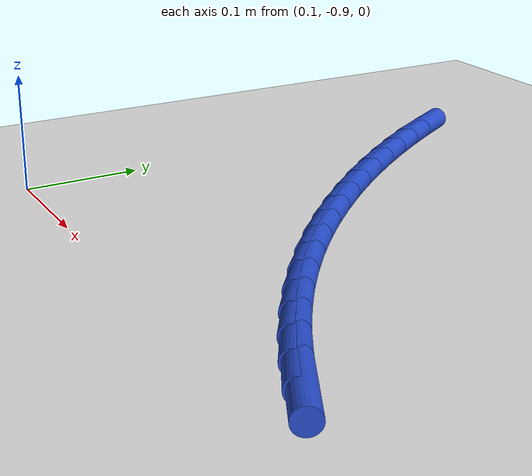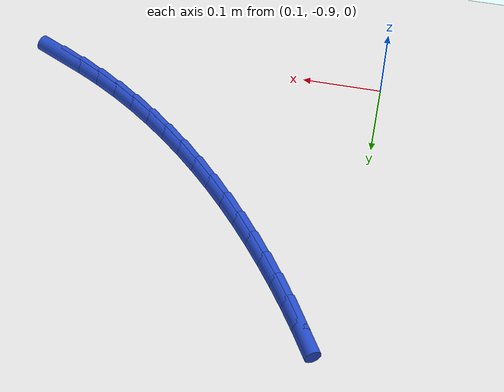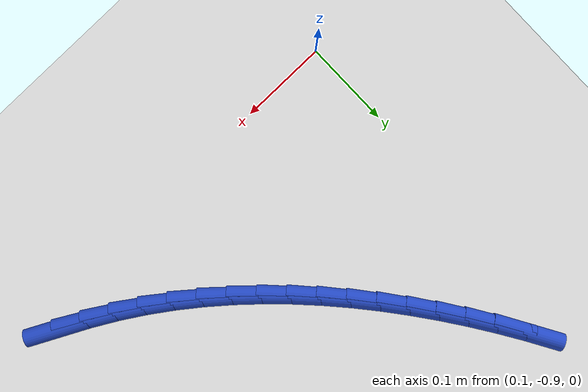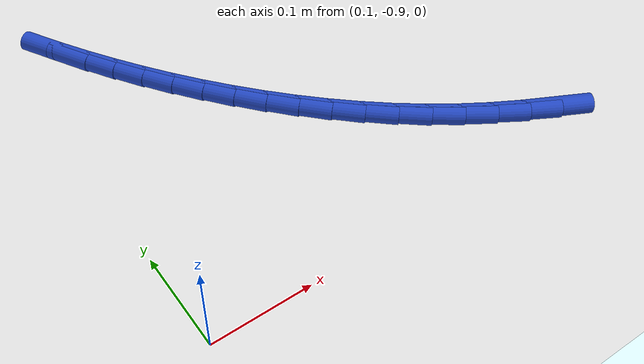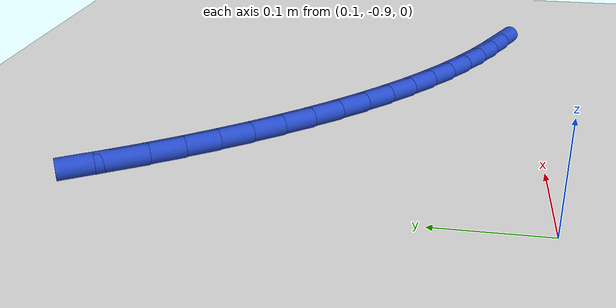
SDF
<sdf version="1.6">
 <world name="default">
  <model name="ground_plane">
   <static>1</static>
   <link name="link">
    <collision name="collision">
     <geometry><plane><normal>0 0 1</normal><size>100 100</size></plane></geometry>
     <surface><friction><ode><mu>100</mu><mu2>50</mu2></ode></friction></surface>
    </collision>
    <visual name="visual">
     <cast_shadows>0</cast_shadows>
     <geometry><plane><normal>0 0 1</normal><size>100 100</size></plane></geometry>
     <material>
      <script><uri>file://media/materials/scripts/gazebo.material</uri><name>Gazebo/WhiteGlow</name></script>
     </material>
    </visual>
   </link>
  </model>
  <model name="line">
   <link name="link_177">
    <pose>0.5100032228682704 -0.8714400340666899 0.01 0 1.57 -0.4641481061450824</pose>
    <collision name="collision">
     <geometry><cylinder><radius>0.01</radius><length>0.08</length></cylinder></geometry>
    </collision>
    <visual name="visual">
     <material>
      <script><name>Gazebo/Blue</name><uri>file://media/materials/scripts/gazebo.material</uri></script>
     </material>
     <geometry><cylinder><radius>0.01</radius><length>0.08</length></cylinder></geometry>
    </visual>
   </link>
   <link name="link_178">
    <pose>0.481501223178427 -0.8571711982950501 0.01 0 1.57 -0.5066080942100217</pose>
    <collision name="collision">
     <geometry><cylinder><radius>0.01</radius><length>0.08</length></cylinder></geometry>
    </collision>
    <visual name="visual">
     <material>
      <script><name>Gazebo/Blue</name><uri>file://media/materials/scripts/gazebo.material</uri></script>
     </material>
     <geometry><cylinder><radius>0.01</radius><length>0.08</length></cylinder></geometry>
    </visual>
   </link>
   <link name="link_179">
    <pose>0.45366542319483366 -0.8417247243254057 0.01 0 1.57 -0.5539468393755395</pose>
    <collision name="collision">
     <geometry><cylinder><radius>0.01</radius><length>0.08</length></cylinder></geometry>
    </collision>
    <visual name="visual">
     <material>
      <script><name>Gazebo/Blue</name><uri>file://media/materials/scripts/gazebo.material</uri></script>
     </material>
     <geometry><cylinder><radius>0.01</radius><length>0.08</length></cylinder></geometry>
    </visual>
   </link>
   <link name="link_180">
    <pose>0.4265826873926517 -0.8249727288971989 0.01 0 1.57 -0.6012461411866137</pose>
    <collision name="collision">
     <geometry><cylinder><radius>0.01</radius><length>0.08</length></cylinder></geometry>
    </collision>
    <visual name="visual">
     <material>
      <script><name>Gazebo/Blue</name><uri>file://media/materials/scripts/gazebo.material</uri></script>
     </material>
     <geometry><cylinder><radius>0.01</radius><length>0.08</length></cylinder></geometry>
    </visual>
   </link>
   <link name="link_181">
    <pose>0.4002799274215932 -0.8069298835766304 0.01 0 1.57 -0.6463280711226028</pose>
    <collision name="collision">
     <geometry><cylinder><radius>0.01</radius><length>0.08</length></cylinder></geometry>
    </collision>
    <visual name="visual">
     <material>
      <script><name>Gazebo/Blue</name><uri>file://media/materials/scripts/gazebo.material</uri></script>
     </material>
     <geometry><cylinder><radius>0.01</radius><length>0.08</length></cylinder></geometry>
    </visual>
   </link>
   <link name="link_182">
    <pose>0.3747571534303697 -0.7876748258695491 0.01 0 1.57 -0.6892089543059764</pose>
    <collision name="collision">
     <geometry><cylinder><radius>0.01</radius><length>0.08</length></cylinder></geometry>
    </collision>
    <visual name="visual">
     <material>
      <script><name>Gazebo/Blue</name><uri>file://media/materials/scripts/gazebo.material</uri></script>
     </material>
     <geometry><cylinder><radius>0.01</radius><length>0.08</length></cylinder></geometry>
    </visual>
   </link>
   <link name="link_183">
    <pose>0.35001424801953007 -0.7672864965636954 0.01 0 1.57 -0.7299446925255674</pose>
    <collision name="collision">
     <geometry><cylinder><radius>0.01</radius><length>0.08</length></cylinder></geometry>
    </collision>
    <visual name="visual">
     <material>
      <script><name>Gazebo/Blue</name><uri>file://media/materials/scripts/gazebo.material</uri></script>
     </material>
     <geometry><cylinder><radius>0.01</radius><length>0.08</length></cylinder></geometry>
    </visual>
   </link>
   <link name="link_184">
    <pose>0.3260510937896244 -0.7458438364468105 0.01 0 1.57 -0.7686136883320347</pose>
    <collision name="collision">
     <geometry><cylinder><radius>0.01</radius><length>0.08</length></cylinder></geometry>
    </collision>
    <visual name="visual">
     <material>
      <script><name>Gazebo/Blue</name><uri>file://media/materials/scripts/gazebo.material</uri></script>
     </material>
     <geometry><cylinder><radius>0.01</radius><length>0.08</length></cylinder></geometry>
    </visual>
   </link>
   <link name="link_185">
    <pose>0.3028675733412012 -0.7234257863066341 0.01 0 1.57 -0.8053107785700121</pose>
    <collision name="collision">
     <geometry><cylinder><radius>0.01</radius><length>0.08</length></cylinder></geometry>
    </collision>
    <visual name="visual">
     <material>
      <script><name>Gazebo/Blue</name><uri>file://media/materials/scripts/gazebo.material</uri></script>
     </material>
     <geometry><cylinder><radius>0.01</radius><length>0.08</length></cylinder></geometry>
    </visual>
   </link>
   <link name="link_186">
    <pose>0.2804635692748095 -0.700111286930907 0.01 0 1.57 -0.8401421068140104</pose>
    <collision name="collision">
     <geometry><cylinder><radius>0.01</radius><length>0.08</length></cylinder></geometry>
    </collision>
    <visual name="visual">
     <material>
      <script><name>Gazebo/Blue</name><uri>file://media/materials/scripts/gazebo.material</uri></script>
     </material>
     <geometry><cylinder><radius>0.01</radius><length>0.08</length></cylinder></geometry>
    </visual>
   </link>
   <link name="link_187">
    <pose>0.25883896419099844 -0.6759792791073692 0.01 0 1.57 -0.8732209566663356</pose>
    <collision name="collision">
     <geometry><cylinder><radius>0.01</radius><length>0.08</length></cylinder></geometry>
    </collision>
    <visual name="visual">
     <material>
      <script><name>Gazebo/Blue</name><uri>file://media/materials/scripts/gazebo.material</uri></script>
     </material>
     <geometry><cylinder><radius>0.01</radius><length>0.08</length></cylinder></geometry>
    </visual>
   </link>
   <link name="link_188">
    <pose>0.23799364069031723 -0.6511087036237614 0.01 0 1.57 -0.9046644941953428</pose>
    <collision name="collision">
     <geometry><cylinder><radius>0.01</radius><length>0.08</length></cylinder></geometry>
    </collision>
    <visual name="visual">
     <material>
      <script><name>Gazebo/Blue</name><uri>file://media/materials/scripts/gazebo.material</uri></script>
     </material>
     <geometry><cylinder><radius>0.01</radius><length>0.08</length></cylinder></geometry>
    </visual>
   </link>
   <link name="link_189">
    <pose>0.21792748137331436 -0.6255785012678234 0.01 0 1.57 -0.9345913269931027</pose>
    <collision name="collision">
     <geometry><cylinder><radius>0.01</radius><length>0.08</length></cylinder></geometry>
    </collision>
    <visual name="visual">
     <material>
      <script><name>Gazebo/Blue</name><uri>file://media/materials/scripts/gazebo.material</uri></script>
     </material>
     <geometry><cylinder><radius>0.01</radius><length>0.08</length></cylinder></geometry>
    </visual>
   </link>
   <link name="link_190">
    <pose>0.1986403688405399 -0.5994676128272965 0.01 0 1.57 -0.9631197707775155</pose>
    <collision name="collision">
     <geometry><cylinder><radius>0.01</radius><length>0.08</length></cylinder></geometry>
    </collision>
    <visual name="visual">
     <material>
      <script><name>Gazebo/Blue</name><uri>file://media/materials/scripts/gazebo.material</uri></script>
     </material>
     <geometry><cylinder><radius>0.01</radius><length>0.08</length></cylinder></geometry>
    </visual>
   </link>
   <link name="link_191">
    <pose>0.1801321856925425 -0.5728549790899211 0.01 0 1.57 -0.9904533334617219</pose>
    <collision name="collision">
     <geometry><cylinder><radius>0.01</radius><length>0.08</length></cylinder></geometry>
    </collision>
    <visual name="visual">
     <material>
      <script><name>Gazebo/Blue</name><uri>file://media/materials/scripts/gazebo.material</uri></script>
     </material>
     <geometry><cylinder><radius>0.01</radius><length>0.08</length></cylinder></geometry>
    </visual>
   </link>
   <link name="link_192">
    <pose>0.16240387226805125 -0.5458160467275385 0.01 0 1.57 -1.0177684990257008</pose>
    <collision name="collision">
     <geometry><cylinder><radius>0.01</radius><length>0.08</length></cylinder></geometry>
    </collision>
    <visual name="visual">
     <material>
      <script><name>Gazebo/Blue</name><uri>file://media/materials/scripts/gazebo.material</uri></script>
     </material>
     <geometry><cylinder><radius>0.01</radius><length>0.08</length></cylinder></geometry>
    </visual>
   </link>
   <link name="link_193">
    <pose>0.14546965104802598 -0.5183823863893542 0.01 0 1.57 -1.0458224001523846</pose>
    <collision name="collision">
     <geometry><cylinder><radius>0.01</radius><length>0.08</length></cylinder></geometry>
    </collision>
    <visual name="visual">
     <material>
      <script><name>Gazebo/Blue</name><uri>file://media/materials/scripts/gazebo.material</uri></script>
     </material>
     <geometry><cylinder><radius>0.01</radius><length>0.08</length></cylinder></geometry>
    </visual>
   </link>
  </model>
 </world>
</sdf>
